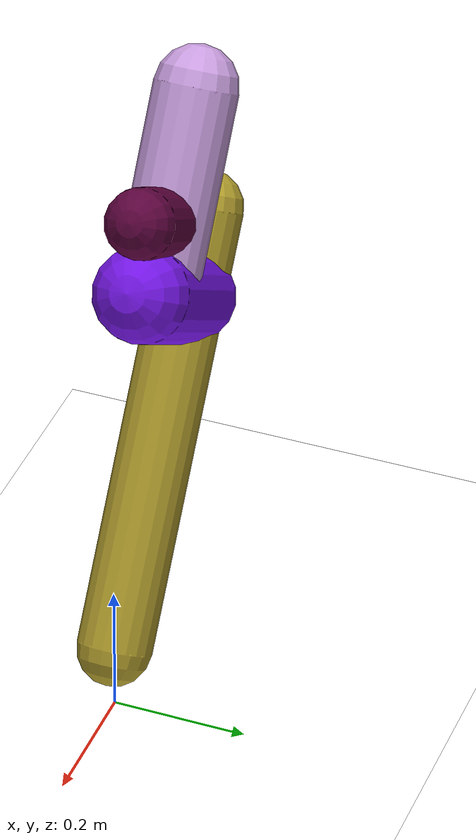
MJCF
<mujoco model="morphology">
  <option timestep="0.01"/>
  <default>
    <default class="/"/>
  </default>
  <asset>
    <texture name="texplane" type="2d" builtin="checker" rgb1="0.1 0.2 0.3" rgb2="0.2 0.3 0.4" width="300" height="300"/>
    <material name="MatPlane" class="/" texture="texplane" texrepeat="20 20" specular="1" shininess="1" reflectance="0.5"/>
  </asset>
  <worldbody>
    <light name="//unnamed_light_0" class="/" directional="true" pos="0 0 1.5" dir="0 0 -1.3" cutoff="1e+02" exponent="1" diffuse="1 1 1" specular="0.1 0.1 0.1"/>
    <geom name="ground" class="/" type="plane" size="15 15 0.5" material="MatPlane" rgba="1 1 1 1"/>
    <body name="body" pos="0 0 0.1">
      <geom name="geom0" class="/" type="capsule" contype="1" conaffinity="1" condim="3" size="0.055" rgba="0.71 0.63 0.18 1" friction="0.4 0.1 0.1" fromto="0 0 0 -0.36 0 0.54"/>
      <body name="body1" pos="-0.29 0 0.43">
        <geom name="geom1" class="/" type="capsule" contype="1" conaffinity="1" condim="3" size="0.07" rgba="0.46 0.084 0.91 1" friction="0.4 0.1 0.1" fromto="0 0 0 0.18 0 0.12"/>
        <body name="body2" pos="0.13 0 0.088">
          <geom name="geom2" class="/" type="capsule" contype="1" conaffinity="1" condim="3" size="0.061" rgba="0.8 0.63 0.89 1" friction="0.4 0.1 0.1" fromto="0 0 0 -0.16 0 0.25"/>
          <body name="body3" pos="-0.056 0 0.086">
            <geom name="geom3" class="/" type="capsule" contype="1" conaffinity="1" condim="3" size="0.051" rgba="0.36 0.013 0.24 1" friction="0.4 0.1 0.1" fromto="0 0 0 0.11 0 0.068"/>
            <joint name="joint3" class="/" type="hinge" axis="0 1 0" limited="true" stiffness="20" range="-61 61" armature="0.1" damping="2"/>
          </body>
          <joint name="joint2" class="/" type="hinge" axis="0 1 0" limited="true" stiffness="20" range="-67 67" armature="0.1" damping="2"/>
        </body>
        <joint name="joint1" class="/" type="hinge" axis="0 1 0" limited="true" stiffness="20" range="-47 47" armature="0.1" damping="2"/>
      </body>
      <joint name="rootx" class="/" type="slide" axis="1 0 0" limited="false" stiffness="0" armature="0" damping="0"/>
      <joint name="rootz" class="/" type="slide" axis="0 0 1" limited="false" stiffness="0" armature="0" damping="0"/>
      <joint name="rooty" class="/" type="hinge" axis="0 1 0" limited="false" stiffness="0" armature="0" damping="0"/>
    </body>
  </worldbody>
  <actuator>
    <motor name="motor3" class="/" ctrllimited="true" ctrlrange="-1 1" gear="1.9e+02" joint="joint3"/>
    <motor name="motor2" class="/" ctrllimited="true" ctrlrange="-1 1" gear="1.2e+02" joint="joint2"/>
    <motor name="motor1" class="/" ctrllimited="true" ctrlrange="-1 1" gear="1.9e+02" joint="joint1"/>
  </actuator>
  <sensor>
    <subtreelinvel name="velocity" body="body"/>
  </sensor>
</mujoco>
